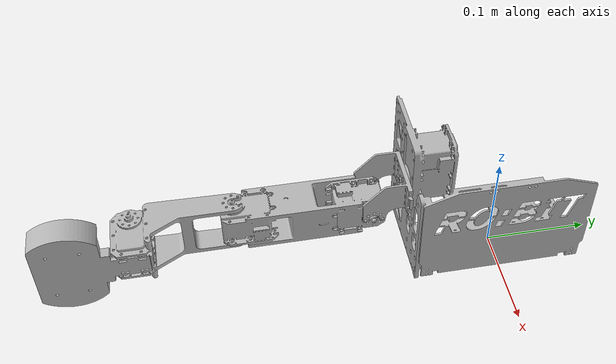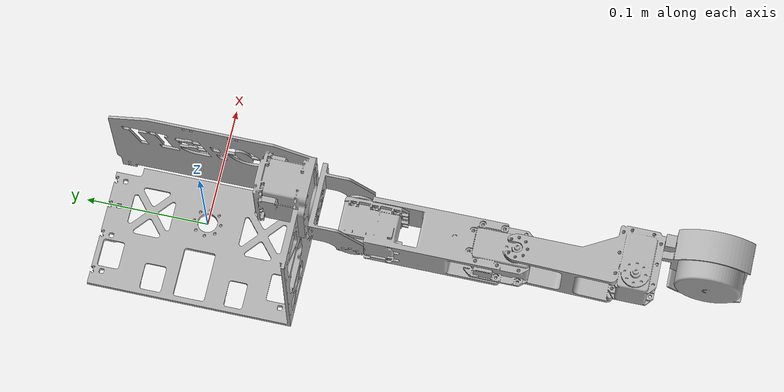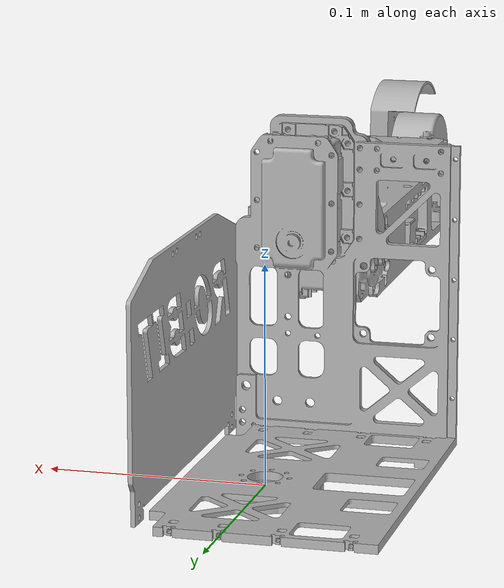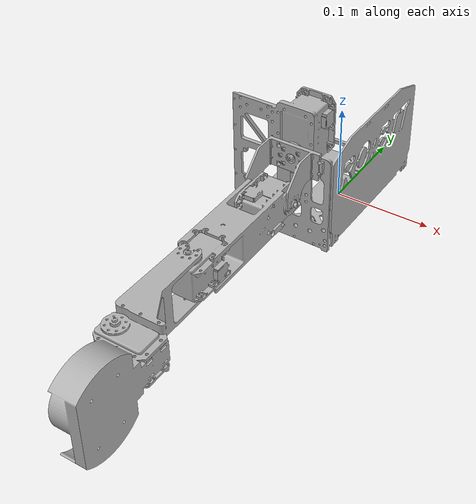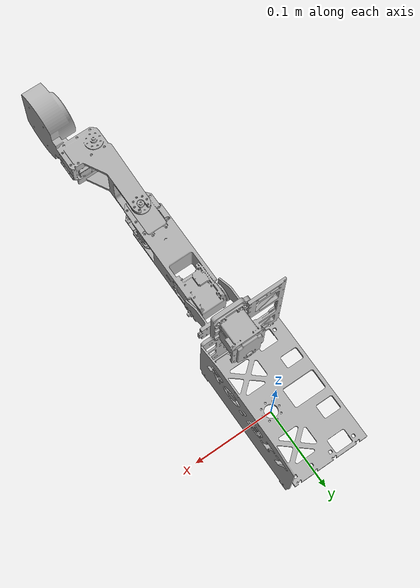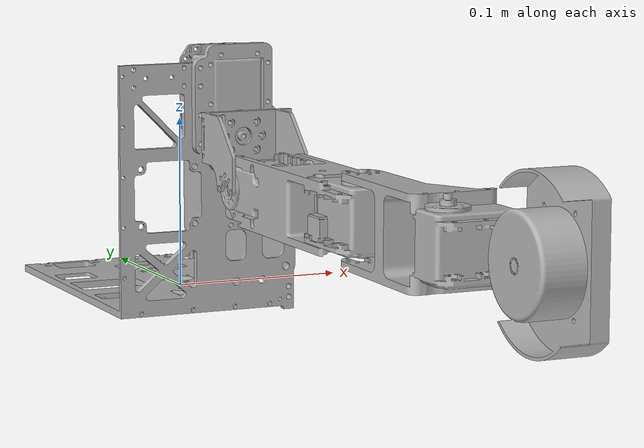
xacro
<?xml version="1.0" ?>
<robot name="src_torso" xmlns:xacro="http://www.ros.org/wiki/xacro">

<xacro:include filename="$(find src_torso_description)/urdf/materials.xacro" />
<xacro:include filename="$(find src_torso_description)/urdf/src_torso.trans" />
<xacro:include filename="$(find src_torso_description)/urdf/src_torso.gazebo" />
<link name="base_link">
  <inertial>
    <origin xyz="0.00014449795003566802 6.187744761021463e-14 -0.002480473640778533" rpy="0 0 0"/>
    <mass value="0.03383387831439633"/>
    <inertia ixx="7e-06" iyy="7e-06" izz="1.4e-05" ixy="-0.0" iyz="0.0" ixz="0.0"/>
  </inertial>
  <visual>
    <origin xyz="0 0 0" rpy="0 0 0"/>
    <geometry>
      <mesh filename="file://$(find src_torso_description)/meshes/base_link.stl" scale="0.001 0.001 0.001"/>
    </geometry>
    <material name="silver"/>
  </visual>
  <collision>
    <origin xyz="0 0 0" rpy="0 0 0"/>
    <geometry>
      <mesh filename="file://$(find src_torso_description)/meshes/base_link.stl" scale="0.001 0.001 0.001"/>
    </geometry>
  </collision>
</link>

<link name="torso_1">
  <inertial>
    <origin xyz="-0.0003612443533365806 -0.04352465252475106 0.07173665541989002" rpy="0 0 0"/>
    <mass value="1.3481459270185865"/>
    <inertia ixx="0.006536" iyy="0.004526" izz="0.004074" ixy="-0.000353" iyz="0.001724" ixz="-0.000148"/>
  </inertial>
  <visual>
    <origin xyz="-0.0 -0.0 0.0" rpy="0 0 0"/>
    <geometry>
      <mesh filename="file://$(find src_torso_description)/meshes/torso_1.stl" scale="0.001 0.001 0.001"/>
    </geometry>
    <material name="silver"/>
  </visual>
  <collision>
    <origin xyz="-0.0 -0.0 0.0" rpy="0 0 0"/>
    <geometry>
      <mesh filename="file://$(find src_torso_description)/meshes/torso_1.stl" scale="0.001 0.001 0.001"/>
    </geometry>
  </collision>
</link>

<link name="shoulder_1">
  <inertial>
    <origin xyz="0.0018054637472919666 -0.011510303052662665 -0.002325896037128905" rpy="0 0 0"/>
    <mass value="0.07511744646934003"/>
    <inertia ixx="1.8e-05" iyy="3.3e-05" izz="3.9e-05" ixy="-2e-06" iyz="-4e-06" ixz="-0.0"/>
  </inertial>
  <visual>
    <origin xyz="0.0 0.09125 -0.10016" rpy="0 0 0"/>
    <geometry>
      <mesh filename="file://$(find src_torso_description)/meshes/shoulder_1.stl" scale="0.001 0.001 0.001"/>
    </geometry>
    <material name="silver"/>
  </visual>
  <collision>
    <origin xyz="0.0 0.09125 -0.10016" rpy="0 0 0"/>
    <geometry>
      <mesh filename="file://$(find src_torso_description)/meshes/shoulder_1.stl" scale="0.001 0.001 0.001"/>
    </geometry>
  </collision>
</link>

<link name="upperarm_1">
  <inertial>
    <origin xyz="-0.020512796469568904 -0.0627306918555113 0.00013812322725874349" rpy="0 0 0"/>
    <mass value="1.0564878329859848"/>
    <inertia ixx="0.00222" iyy="0.00024" izz="0.002222" ixy="-1e-06" iyz="9e-06" ixz="0.0"/>
  </inertial>
  <visual>
    <origin xyz="-0.01953 0.12375 -0.07516" rpy="0 0 0"/>
    <geometry>
      <mesh filename="file://$(find src_torso_description)/meshes/upperarm_1.stl" scale="0.001 0.001 0.001"/>
    </geometry>
    <material name="silver"/>
  </visual>
  <collision>
    <origin xyz="-0.01953 0.12375 -0.07516" rpy="0 0 0"/>
    <geometry>
      <mesh filename="file://$(find src_torso_description)/meshes/upperarm_1.stl" scale="0.001 0.001 0.001"/>
    </geometry>
  </collision>
</link>

<link name="forearm_1">
  <inertial>
    <origin xyz="0.017609220639545405 -0.11659784306625509 -0.020369433563468306" rpy="0 0 0"/>
    <mass value="1.3903503393300478"/>
    <inertia ixx="0.002891" iyy="0.000701" izz="0.002724" ixy="0.000474" iyz="-1e-06" ixz="3e-06"/>
  </inertial>
  <visual>
    <origin xyz="0.00097 0.24995 -0.09571" rpy="0 0 0"/>
    <geometry>
      <mesh filename="file://$(find src_torso_description)/meshes/forearm_1.stl" scale="0.001 0.001 0.001"/>
    </geometry>
    <material name="silver"/>
  </visual>
  <collision>
    <origin xyz="0.00097 0.24995 -0.09571" rpy="0 0 0"/>
    <geometry>
      <mesh filename="file://$(find src_torso_description)/meshes/forearm_1.stl" scale="0.001 0.001 0.001"/>
    </geometry>
  </collision>
</link>

<link name="ee_link_1">
  <inertial>
    <origin xyz="8.738739019804875e-07 -0.00020876801439312365 6.0532070052798925e-06" rpy="0 0 0"/>
    <mass value="1.9027076814570735e-07"/>
    <inertia ixx="0.0" iyy="0.0" izz="0.0" ixy="-0.0" iyz="-0.0" ixz="0.0"/>
  </inertial>
  <visual>
    <origin xyz="-0.003429 0.398773 -0.075297" rpy="0 0 0"/>
    <geometry>
      <mesh filename="file://$(find src_torso_description)/meshes/ee_link_1.stl" scale="0.001 0.001 0.001"/>
    </geometry>
    <material name="silver"/>
  </visual>
  <collision>
    <origin xyz="-0.003429 0.398773 -0.075297" rpy="0 0 0"/>
    <geometry>
      <mesh filename="file://$(find src_torso_description)/meshes/ee_link_1.stl" scale="0.001 0.001 0.001"/>
    </geometry>
  </collision>
</link>

<joint name="rotate_torso" type="continuous">
  <origin xyz="0.0 0.0 0.0" rpy="0 0 0"/>
  <parent link="base_link"/>
  <child link="torso_1"/>
  <axis xyz="-0.0 -0.0 1.0"/>
</joint>

<joint name="rotate_1" type="continuous">
  <origin xyz="-0.0 -0.09125 0.10016" rpy="0 0 0"/>
  <parent link="torso_1"/>
  <child link="shoulder_1"/>
  <axis xyz="-0.0 -1.0 -0.0"/>
</joint>

<joint name="rotate_3" type="continuous">
  <origin xyz="0.01953 -0.0325 -0.025" rpy="0 0 0"/>
  <parent link="shoulder_1"/>
  <child link="upperarm_1"/>
  <axis xyz="-1.0 0.0 -5e-06"/>
</joint>

<joint name="rotate_5" type="continuous">
  <origin xyz="-0.0205 -0.1262 0.02055" rpy="0 0 0"/>
  <parent link="upperarm_1"/>
  <child link="forearm_1"/>
  <axis xyz="-5e-06 3e-06 1.0"/>
</joint>

<joint name="rigid_dummy" type="fixed">
  <origin xyz="0.004399 -0.148823 -0.020413" rpy="0 0 0"/>
  <parent link="forearm_1"/>
  <child link="ee_link_1"/>
</joint>

</robot>

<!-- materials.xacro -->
<robot name="src_torso" xmlns:xacro="http://www.ros.org/wiki/xacro" >

<material name="silver">
  <color rgba="0.700 0.700 0.700 1.000"/>
</material>

</robot>

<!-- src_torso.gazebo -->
<robot name="src_torso" xmlns:xacro="http://www.ros.org/wiki/xacro" >

<xacro:property name="body_color" value="Gazebo/Silver" />

<gazebo>
  <plugin name="control" filename="libgazebo_ros_control.so"/>
</gazebo>
<gazebo reference="base_link">
  <material>${body_color}</material>
  <mu1>0.2</mu1>
  <mu2>0.2</mu2>
  <self_collide>true</self_collide>
  <gravity>true</gravity>
</gazebo>

<gazebo reference="torso_1">
  <material>${body_color}</material>
  <mu1>0.2</mu1>
  <mu2>0.2</mu2>
  <self_collide>true</self_collide>
</gazebo>

<gazebo reference="shoulder_1">
  <material>${body_color}</material>
  <mu1>0.2</mu1>
  <mu2>0.2</mu2>
  <self_collide>true</self_collide>
</gazebo>

<gazebo reference="upperarm_1">
  <material>${body_color}</material>
  <mu1>0.2</mu1>
  <mu2>0.2</mu2>
  <self_collide>true</self_collide>
</gazebo>

<gazebo reference="forearm_1">
  <material>${body_color}</material>
  <mu1>0.2</mu1>
  <mu2>0.2</mu2>
  <self_collide>true</self_collide>
</gazebo>

<gazebo reference="ee_link_1">
  <material>${body_color}</material>
  <mu1>0.2</mu1>
  <mu2>0.2</mu2>
  <self_collide>true</self_collide>
</gazebo>

</robot>
